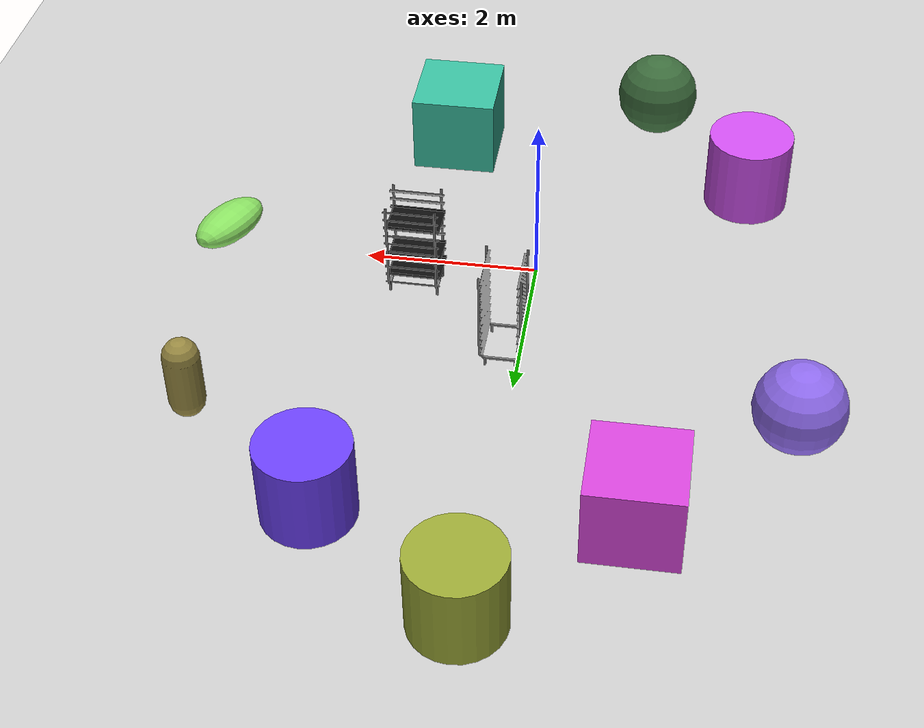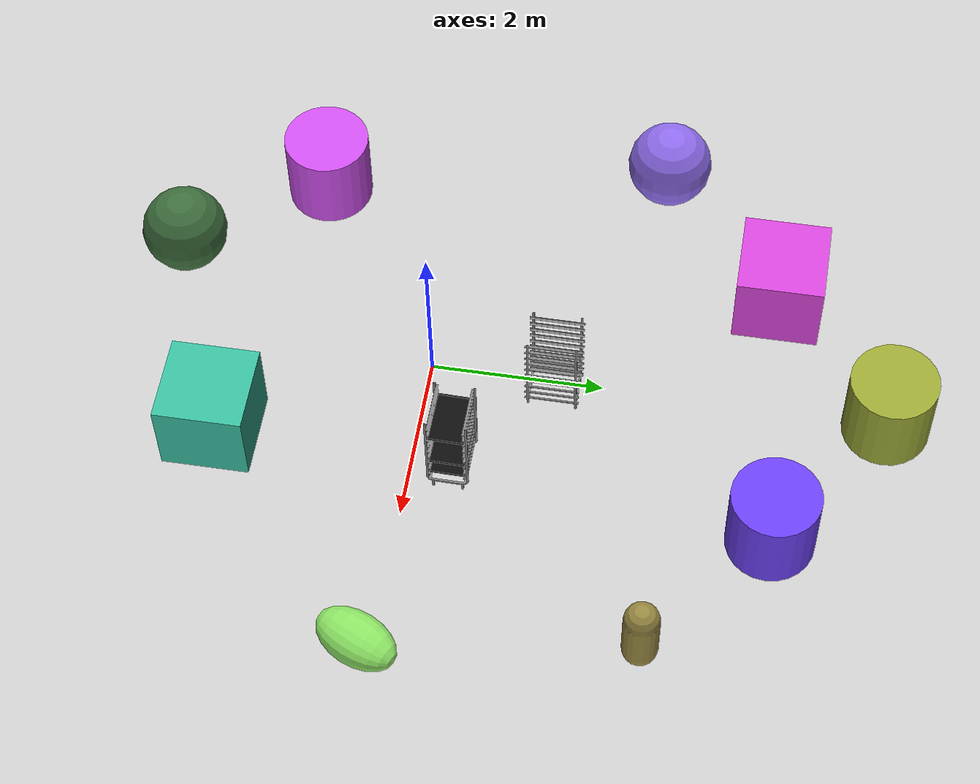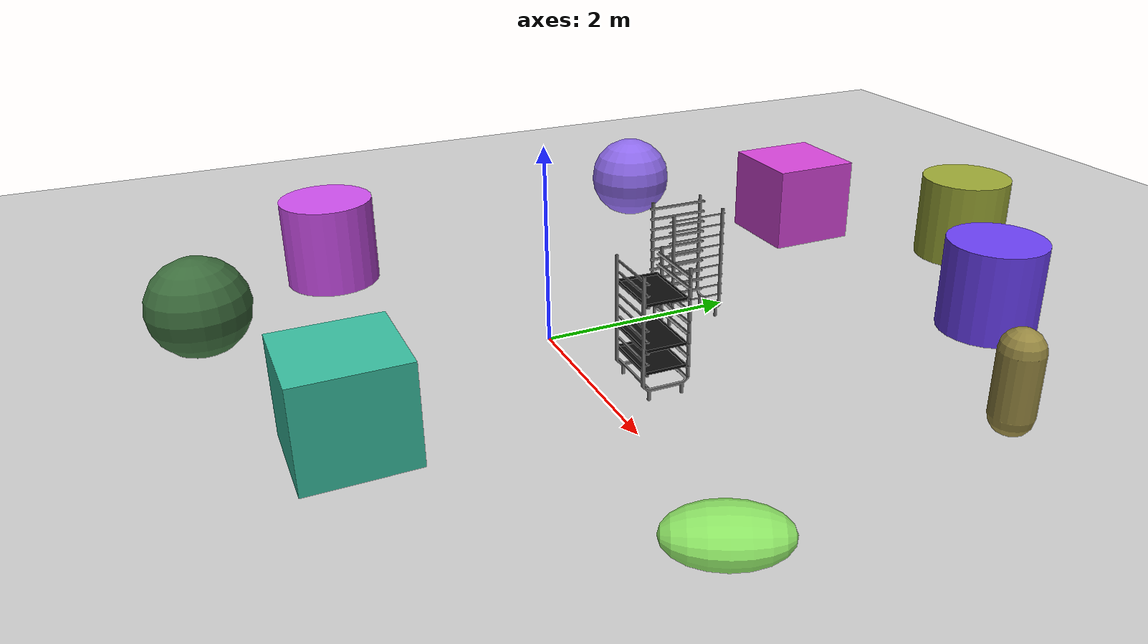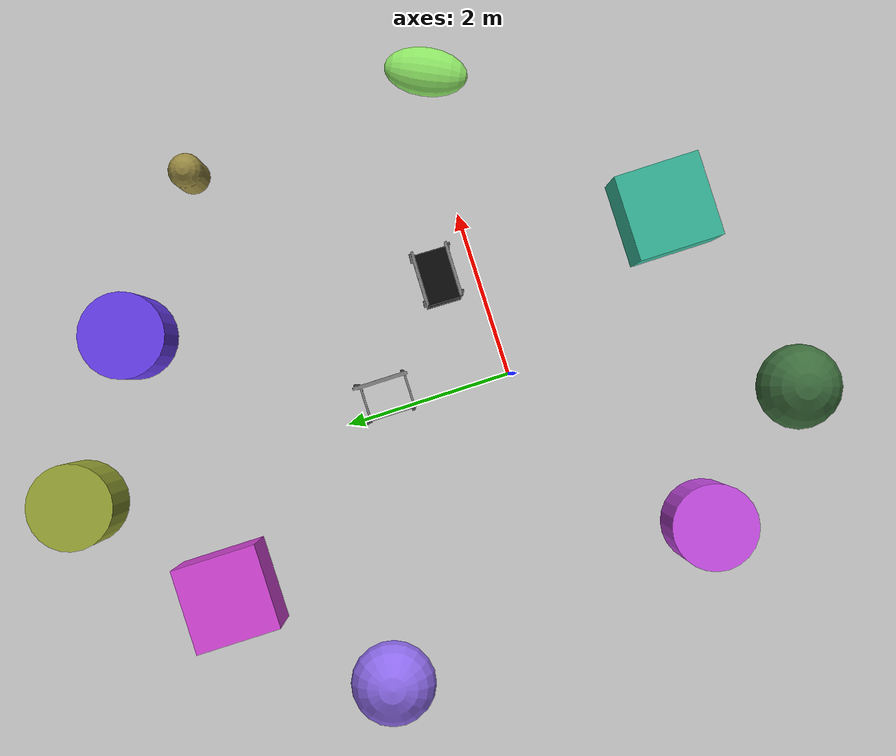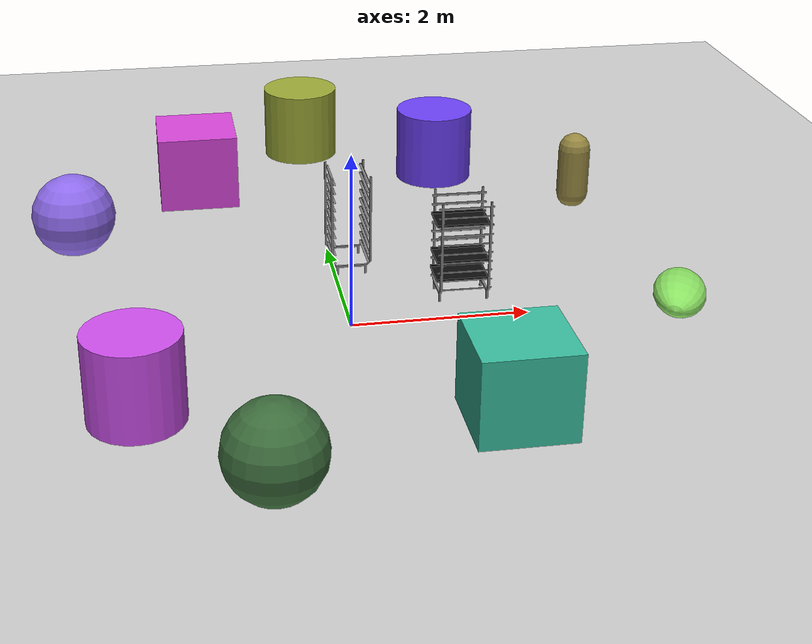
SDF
<sdf version='1.10'>
  <world name='learning'>
    <physics name='1ms' type='ignored'>
      <max_step_size>0.0050000000000000001</max_step_size>
      <real_time_factor>1</real_time_factor>
      <real_time_update_rate>1000</real_time_update_rate>
    </physics>
    <plugin name='gz::sim::systems::Physics' filename='gz-sim-physics-system'/>
    <plugin name='gz::sim::systems::UserCommands' filename='gz-sim-user-commands-system'/>
    <plugin name='gz::sim::systems::SceneBroadcaster' filename='gz-sim-scene-broadcaster-system'/>
    <plugin name='gz::sim::systems::Contact' filename='gz-sim-contact-system'/>
    <plugin name='gz::sim::systems::Sensors' filename='gz-sim-sensors-system'>
      <render_engine>ogre2</render_engine>
    </plugin>
    <gravity>0 0 -9.8100000000000005</gravity>
    <magnetic_field>6.0000000000000002e-06 2.3e-05 -4.1999999999999998e-05</magnetic_field>
    <atmosphere type='adiabatic'/>
    <scene>
      <ambient>0.400000006 0.400000006 0.400000006 1</ambient>
      <background>0.699999988 0.699999988 0.699999988 1</background>
      <shadows>true</shadows>
    </scene>
    <model name='ground_plane'>
      <plugin name='gz::sim::systems::JointStatePublisher' filename='gz-sim-joint-state-publisher-system'>
        <topic>joint_states</topic>
      </plugin>
      <static>true</static>
      <link name='link'>
        <collision name='collision'>
          <geometry>
            <plane>
              <normal>0 0 1</normal>
              <size>100 100</size>
            </plane>
          </geometry>
          <surface>
            <friction>
              <ode/>
            </friction>
            <bounce/>
            <contact/>
          </surface>
        </collision>
        <visual name='visual'>
          <plugin name='gz::sim::systems::Label' filename='libgz-sim-label-system.so'>
            <label>102</label>
          </plugin>
          <geometry>
            <plane>
              <normal>0 0 1</normal>
              <size>100 100</size>
            </plane>
          </geometry>
          <material>
            <ambient>0.800000012 0.800000012 0.800000012 1</ambient>
            <diffuse>0.800000012 0.800000012 0.800000012 1</diffuse>
            <specular>0.800000012 0.800000012 0.800000012 1</specular>
          </material>
        </visual>
        <pose>0 0 0 0 0 0</pose>
        <inertial>
          <pose>0 0 0 0 0 0</pose>
          <mass>1</mass>
          <inertia>
            <ixx>1</ixx>
            <ixy>0</ixy>
            <ixz>0</ixz>
            <iyy>1</iyy>
            <iyz>0</iyz>
            <izz>1</izz>
          </inertia>
        </inertial>
        <enable_wind>false</enable_wind>
      </link>
      <pose>0 0 0 0 0 0</pose>
      <self_collide>false</self_collide>
    </model>
    <model name='Vassoio_0'>
      <pose>1.0071960460966374 0.28433809294650059 0.31089517546142004 0.00017805179260752289 6.9760886605623451e-06 -0.015506780346211647</pose>
      <static>false</static>
      <self_collide>false</self_collide>
      <link name='link'>
        <pose>0 0 0 0 0 0</pose>
        <inertial>
          <pose>0.29999999999999999 0.20000000000000001 0.0032000000000000002 0 0 0</pose>
          <mass>1.522</mass>
          <inertia>
            <ixx>0.0079399999999999991</ixx>
            <ixy>0</ixy>
            <ixz>0</ixz>
            <iyy>0.01404</iyy>
            <iyz>0</iyz>
            <izz>0.02198</izz>
          </inertia>
        </inertial>
        <visual name='visual'>
          <plugin name='gz::sim::systems::Label' filename='libgz-sim-label-system.so'>
            <label>100</label>
          </plugin>
          <geometry>
            <mesh>
              <uri>file:///home/nicola/ros2_ws/src/meshes/Vassoio.dae</uri>
            </mesh>
          </geometry>
          <material>
            <ambient>0.0500000007 0.0500000007 0.0500000007 1</ambient>
            <diffuse>0.0500000007 0.0500000007 0.0500000007 1</diffuse>
            <specular>0.100000001 0.100000001 0.100000001 1</specular>
          </material>
        </visual>
        <collision name='collision'>
          <geometry>
            <mesh>
              <uri>file:///home/nicola/ros2_ws/src/meshes/Vassoio.dae</uri>
            </mesh>
          </geometry>
          <surface>
            <friction>
              <torsional>
                <coefficient>0.001</coefficient>
                <use_patch_radius>true</use_patch_radius>
                <patch_radius>0.050000000000000003</patch_radius>
              </torsional>
            </friction>
            <bounce>
              <restitution_coefficient>0.20000000000000001</restitution_coefficient>
              <threshold>100000</threshold>
            </bounce>
          </surface>
        </collision>
        <enable_wind>false</enable_wind>
      </link>
    </model>
    <model name='Carrello'>
      <pose>1.0487509965896604 0.71814972162246726 0.1399726718664169 -6.7168794197503111e-06 0.00017787300281785703 -1.5828999942067343</pose>
      <static>true</static>
      <self_collide>false</self_collide>
      <link name='link'>
        <pose>0 0 0 0 0 0</pose>
        <inertial>
          <pose>0.23749999999999999 0.28689999999999999 0.499 0 0 0</pose>
          <mass>24.928000000000001</mass>
          <inertia>
            <ixx>0.066227999999999995</ixx>
            <ixy>0</ixy>
            <ixz>0.013979</ixz>
            <iyy>0.074418999999999999</iyy>
            <iyz>0</iyz>
            <izz>0.0082780000000000006</izz>
          </inertia>
        </inertial>
        <visual name='visual'>
          <plugin name='gz::sim::systems::Label' filename='libgz-sim-label-system.so'>
            <label>101</label>
          </plugin>
          <geometry>
            <mesh>
              <uri>file:///home/nicola/ros2_ws/src/meshes/Carrello.dae</uri>
            </mesh>
          </geometry>
          <material>
            <ambient>0.5 0.5 0.5 1</ambient>
            <diffuse>0.5 0.5 0.5 1</diffuse>
            <specular>0.300000012 0.300000012 0.300000012 1</specular>
          </material>
        </visual>
        <collision name='collision'>
          <geometry>
            <mesh>
              <uri>file:///home/nicola/ros2_ws/src/meshes/Carrello.dae</uri>
            </mesh>
          </geometry>
          <surface>
            <friction>
              <torsional>
                <coefficient>0.001</coefficient>
                <use_patch_radius>true</use_patch_radius>
                <patch_radius>0.050000000000000003</patch_radius>
              </torsional>
            </friction>
            <bounce>
              <restitution_coefficient>0.0050000000000000001</restitution_coefficient>
              <threshold>100000</threshold>
            </bounce>
          </surface>
        </collision>
        <enable_wind>false</enable_wind>
      </link>
    </model>
    <model name='Vassoio_1'>
      <pose>1.6152702889036141 0.67432121630093589 0.53096282441638931 -0.00017820534252585216 -5.9574977808868707e-06 3.1263503681007849</pose>
      <static>false</static>
      <self_collide>false</self_collide>
      <link name='link'>
        <pose>0 0 0 0 0 0</pose>
        <inertial>
          <pose>0.29999999999999999 0.20000000000000001 0.0032000000000000002 0 0 0</pose>
          <mass>1.522</mass>
          <inertia>
            <ixx>0.0079399999999999991</ixx>
            <ixy>0</ixy>
            <ixz>0</ixz>
            <iyy>0.01404</iyy>
            <iyz>0</iyz>
            <izz>0.02198</izz>
          </inertia>
        </inertial>
        <visual name='visual'>
          <plugin name='gz::sim::systems::Label' filename='libgz-sim-label-system.so'>
            <label>100</label>
          </plugin>
          <geometry>
            <mesh>
              <uri>file:///home/nicola/ros2_ws/src/meshes/Vassoio.dae</uri>
            </mesh>
          </geometry>
          <material>
            <ambient>0.0500000007 0.0500000007 0.0500000007 1</ambient>
            <diffuse>0.0500000007 0.0500000007 0.0500000007 1</diffuse>
            <specular>0.100000001 0.100000001 0.100000001 1</specular>
          </material>
        </visual>
        <collision name='collision'>
          <geometry>
            <mesh>
              <uri>file:///home/nicola/ros2_ws/src/meshes/Vassoio.dae</uri>
            </mesh>
          </geometry>
          <surface>
            <friction>
              <torsional>
                <coefficient>0.001</coefficient>
                <use_patch_radius>true</use_patch_radius>
                <patch_radius>0.050000000000000003</patch_radius>
              </torsional>
            </friction>
            <bounce>
              <restitution_coefficient>0.20000000000000001</restitution_coefficient>
              <threshold>100000</threshold>
            </bounce>
          </surface>
        </collision>
        <enable_wind>false</enable_wind>
      </link>
    </model>
    <model name='Vassoio_2'>
      <pose>1.6136812492192507 0.67079874047670474 0.97096157791136739 -0.00017814258199808886 -8.0806190346686321e-06 3.1199832047120801</pose>
      <static>false</static>
      <self_collide>false</self_collide>
      <link name='link'>
        <pose>0 0 0 0 0 0</pose>
        <inertial>
          <pose>0.29999999999999999 0.20000000000000001 0.0032000000000000002 0 0 0</pose>
          <mass>1.522</mass>
          <inertia>
            <ixx>0.0079399999999999991</ixx>
            <ixy>0</ixy>
            <ixz>0</ixz>
            <iyy>0.01404</iyy>
            <iyz>0</iyz>
            <izz>0.02198</izz>
          </inertia>
        </inertial>
        <visual name='visual'>
          <plugin name='gz::sim::systems::Label' filename='libgz-sim-label-system.so'>
            <label>100</label>
          </plugin>
          <geometry>
            <mesh>
              <uri>file:///home/nicola/ros2_ws/src/meshes/Vassoio.dae</uri>
            </mesh>
          </geometry>
          <material>
            <ambient>0.0500000007 0.0500000007 0.0500000007 1</ambient>
            <diffuse>0.0500000007 0.0500000007 0.0500000007 1</diffuse>
            <specular>0.100000001 0.100000001 0.100000001 1</specular>
          </material>
        </visual>
        <collision name='collision'>
          <geometry>
            <mesh>
              <uri>file:///home/nicola/ros2_ws/src/meshes/Vassoio.dae</uri>
            </mesh>
          </geometry>
          <surface>
            <friction>
              <torsional>
                <coefficient>0.001</coefficient>
                <use_patch_radius>true</use_patch_radius>
                <patch_radius>0.050000000000000003</patch_radius>
              </torsional>
            </friction>
            <bounce>
              <restitution_coefficient>0.20000000000000001</restitution_coefficient>
              <threshold>100000</threshold>
            </bounce>
          </surface>
        </collision>
        <enable_wind>false</enable_wind>
      </link>
    </model>
    <model name='sphere'>
      <pose>-3.0188999999999999 2.3855200000000001 0.5 0 0 0</pose>
      <link name='sphere_link'>
        <inertial>
          <inertia>
            <ixx>0.10000000000000001</ixx>
            <ixy>0</ixy>
            <ixz>0</ixz>
            <iyy>0.10000000000000001</iyy>
            <iyz>0</iyz>
            <izz>0.10000000000000001</izz>
          </inertia>
          <mass>1</mass>
          <pose>0 0 0 0 0 0</pose>
        </inertial>
        <collision name='sphere_collision'>
          <geometry>
            <sphere>
              <radius>0.5</radius>
            </sphere>
          </geometry>
          <surface>
            <friction>
              <ode/>
            </friction>
            <bounce/>
            <contact/>
          </surface>
        </collision>
        <visual name='sphere_visual'>
          <geometry>
            <sphere>
              <radius>0.5</radius>
            </sphere>
          </geometry>
          <material>
            <ambient>0.560000002 0.419999987 0.930000007 1</ambient>
            <diffuse>0.560000002 0.419999987 0.930000007 1</diffuse>
            <specular>0.5 0.5 0.5 1</specular>
          </material>
        </visual>
        <pose>0 0 0 0 0 0</pose>
        <enable_wind>false</enable_wind>
      </link>
      <static>true</static>
      <self_collide>false</self_collide>
    </model>
    <model name='cylinder'>
      <pose>-2.3627099999999999 -1.6678200000000001 0.499996 0 0 0</pose>
      <link name='cylinder_link'>
        <inertial>
          <inertia>
            <ixx>0.14580000000000001</ixx>
            <ixy>0</ixy>
            <ixz>0</ixz>
            <iyy>0.14580000000000001</iyy>
            <iyz>0</iyz>
            <izz>0.125</izz>
          </inertia>
          <mass>1</mass>
          <pose>0 0 0 0 0 0</pose>
        </inertial>
        <collision name='cylinder_collision'>
          <geometry>
            <cylinder>
              <radius>0.5</radius>
              <length>1</length>
            </cylinder>
          </geometry>
          <surface>
            <friction>
              <ode/>
            </friction>
            <bounce/>
            <contact/>
          </surface>
        </collision>
        <visual name='cylinder_visual'>
          <geometry>
            <cylinder>
              <radius>0.5</radius>
              <length>1</length>
            </cylinder>
          </geometry>
          <material>
            <ambient>0.810000002 0.310000002 0.930000007 1</ambient>
            <diffuse>0.810000002 0.310000002 0.930000007 1</diffuse>
            <specular>0.5 0.5 0.5 1</specular>
          </material>
        </visual>
        <pose>0 0 0 0 0 0</pose>
        <enable_wind>false</enable_wind>
      </link>
      <static>true</static>
      <self_collide>false</self_collide>
    </model>
    <model name='box'>
      <pose>1.27199 -2.2716500000000002 0.49982300000000002 9.4000000000000144e-05 -0.0001509999999999992 0.0021530000000000082</pose>
      <link name='box_link'>
        <inertial>
          <inertia>
            <ixx>0.16666</ixx>
            <ixy>0</ixy>
            <ixz>0</ixz>
            <iyy>0.16666</iyy>
            <iyz>0</iyz>
            <izz>0.16666</izz>
          </inertia>
          <mass>1</mass>
          <pose>0 0 0 0 0 0</pose>
        </inertial>
        <collision name='box_collision'>
          <geometry>
            <box>
              <size>1 1 1</size>
            </box>
          </geometry>
          <surface>
            <friction>
              <ode/>
            </friction>
            <bounce/>
            <contact/>
          </surface>
        </collision>
        <visual name='box_visual'>
          <geometry>
            <box>
              <size>1 1 1</size>
            </box>
          </geometry>
          <material>
            <ambient>0.219999999 0.74000001 0.620000005 1</ambient>
            <diffuse>0.219999999 0.74000001 0.620000005 1</diffuse>
            <specular>0.5 0.5 0.5 1</specular>
          </material>
        </visual>
        <pose>0 0 0 0 0 0</pose>
        <enable_wind>false</enable_wind>
      </link>
      <static>true</static>
      <self_collide>false</self_collide>
    </model>
    <model name='Carrello_1'>
      <pose>-0.05540379136800766 1.1711015701293945 0.1399722546339035 -4.6297699311223587e-05 6.8408997572320471e-05 -5.7507100025537275e-05</pose>
      <static>true</static>
      <self_collide>false</self_collide>
      <link name='link'>
        <pose>0 0 0 0 0 0</pose>
        <inertial>
          <pose>0.23749999999999999 0.28689999999999999 0.499 0 0 0</pose>
          <mass>24.928000000000001</mass>
          <inertia>
            <ixx>0.066227999999999995</ixx>
            <ixy>0</ixy>
            <ixz>0.013979</ixz>
            <iyy>0.074418999999999999</iyy>
            <iyz>0</iyz>
            <izz>0.0082780000000000006</izz>
          </inertia>
        </inertial>
        <visual name='visual'>
          <plugin name='gz::sim::systems::Label' filename='libgz-sim-label-system.so'>
            <label>101</label>
          </plugin>
          <geometry>
            <mesh>
              <uri>file:///home/nicola/ros2_ws/src/meshes/Carrello.dae</uri>
            </mesh>
          </geometry>
          <material>
            <ambient>0.5 0.5 0.5 1</ambient>
            <diffuse>0.5 0.5 0.5 1</diffuse>
            <specular>0.300000012 0.300000012 0.300000012 1</specular>
          </material>
        </visual>
        <collision name='collision'>
          <geometry>
            <mesh>
              <uri>file:///home/nicola/ros2_ws/src/meshes/Carrello.dae</uri>
            </mesh>
          </geometry>
          <surface>
            <friction>
              <torsional>
                <coefficient>0.001</coefficient>
                <use_patch_radius>true</use_patch_radius>
                <patch_radius>0.050000000000000003</patch_radius>
              </torsional>
            </friction>
            <bounce>
              <restitution_coefficient>0.0050000000000000001</restitution_coefficient>
              <threshold>100000</threshold>
            </bounce>
          </surface>
        </collision>
        <enable_wind>false</enable_wind>
      </link>
    </model>
    <model name='cylinder_0'>
      <pose>0.074198 5.2423299999999999 0.49998300000000001 0 0 0</pose>
      <link name='cylinder_link'>
        <inertial>
          <inertia>
            <ixx>0.14580000000000001</ixx>
            <ixy>0</ixy>
            <ixz>0</ixz>
            <iyy>0.14580000000000001</iyy>
            <iyz>0</iyz>
            <izz>0.125</izz>
          </inertia>
          <mass>1</mass>
          <pose>0 0 0 0 0 0</pose>
        </inertial>
        <collision name='cylinder_collision'>
          <geometry>
            <cylinder>
              <radius>0.5</radius>
              <length>1</length>
            </cylinder>
          </geometry>
          <surface>
            <friction>
              <ode/>
            </friction>
            <bounce/>
            <contact/>
          </surface>
        </collision>
        <visual name='cylinder_visual'>
          <geometry>
            <cylinder>
              <radius>0.5</radius>
              <length>1</length>
            </cylinder>
          </geometry>
          <material>
            <ambient>0.610000014 0.660000026 0.209999993 1</ambient>
            <diffuse>0.610000014 0.660000026 0.209999993 1</diffuse>
            <specular>0.5 0.5 0.5 1</specular>
          </material>
        </visual>
        <pose>0 0 0 0 0 0</pose>
        <enable_wind>false</enable_wind>
      </link>
      <static>true</static>
      <self_collide>false</self_collide>
    </model>
    <model name='ground_plane_1'>
      <plugin name='gz::sim::systems::JointStatePublisher' filename='gz-sim-joint-state-publisher-system'>
        <topic>joint_states</topic>
      </plugin>
      <static>true</static>
      <link name='link'>
        <collision name='collision'>
          <geometry>
            <plane>
              <normal>0 0 1</normal>
              <size>100 100</size>
            </plane>
          </geometry>
          <surface>
            <friction>
              <ode/>
            </friction>
            <bounce/>
            <contact/>
          </surface>
        </collision>
        <visual name='visual'>
          <plugin name='gz::sim::systems::Label' filename='libgz-sim-label-system.so'>
            <label>102</label>
          </plugin>
          <geometry>
            <plane>
              <normal>0 0 1</normal>
              <size>100 100</size>
            </plane>
          </geometry>
          <material>
            <ambient>0.800000012 0.800000012 0.800000012 1</ambient>
            <diffuse>0.800000012 0.800000012 0.800000012 1</diffuse>
            <specular>0.800000012 0.800000012 0.800000012 1</specular>
          </material>
        </visual>
        <pose>0 0 0 0 0 0</pose>
        <inertial>
          <pose>0 0 0 0 0 0</pose>
          <mass>1</mass>
          <inertia>
            <ixx>1</ixx>
            <ixy>0</ixy>
            <ixz>0</ixz>
            <iyy>1</iyy>
            <iyz>0</iyz>
            <izz>1</izz>
          </inertia>
        </inertial>
        <enable_wind>false</enable_wind>
      </link>
      <pose>1.9240471710147793 -0.45503547867003974 0 0 0 0</pose>
      <self_collide>false</self_collide>
    </model>
    <model name='capsule'>
      <pose>3.3494209916174582 2.8507070713263238 0.4999999951681095 0 0 0</pose>
      <link name='capsule_link'>
        <inertial>
          <inertia>
            <ixx>0.074153999999999998</ixx>
            <ixy>0</ixy>
            <ixz>0</ixz>
            <iyy>0.074153999999999998</iyy>
            <iyz>0</iyz>
            <izz>0.018769000000000001</izz>
          </inertia>
          <mass>1</mass>
          <pose>0 0 0 0 0 0</pose>
        </inertial>
        <collision name='capsule_collision'>
          <geometry>
            <capsule>
              <radius>0.20000000000000001</radius>
              <length>0.59999999999999998</length>
            </capsule>
          </geometry>
          <surface>
            <friction>
              <ode/>
            </friction>
            <bounce/>
            <contact/>
          </surface>
        </collision>
        <visual name='capsule_visual'>
          <geometry>
            <capsule>
              <radius>0.20000000000000001</radius>
              <length>0.59999999999999998</length>
            </capsule>
          </geometry>
          <material>
            <ambient>0.600000024 0.540000021 0.25999999 1</ambient>
            <diffuse>0.600000024 0.540000021 0.25999999 1</diffuse>
            <specular>0.5 0.5 0.5 1</specular>
          </material>
        </visual>
        <pose>0 0 0 0 0 0</pose>
        <enable_wind>false</enable_wind>
      </link>
      <static>false</static>
      <self_collide>false</self_collide>
    </model>
    <model name='ellipsoid'>
      <pose>3.7091939589159466 -0.14779110055204117 0.18666845060864987 1.5707959663867626 -1.3774885618425026 -0.45564191438129575</pose>
      <link name='ellipsoid_link'>
        <inertial>
          <inertia>
            <ixx>0.068000000000000005</ixx>
            <ixy>0</ixy>
            <ixz>0</ixz>
            <iyy>0.058000000000000003</iyy>
            <iyz>0</iyz>
            <izz>0.025999999999999999</izz>
          </inertia>
          <mass>1</mass>
          <pose>0 0 0 0 0 0</pose>
        </inertial>
        <collision name='ellipsoid_collision'>
          <geometry>
            <ellipsoid>
              <radii>0.20000000000000001 0.29999999999999999 0.5</radii>
            </ellipsoid>
          </geometry>
          <surface>
            <friction>
              <ode/>
            </friction>
            <bounce/>
            <contact/>
          </surface>
        </collision>
        <visual name='ellipsoid_visual'>
          <geometry>
            <ellipsoid>
              <radii>0.20000000000000001 0.29999999999999999 0.5</radii>
            </ellipsoid>
          </geometry>
          <material>
            <ambient>0.550000012 0.889999986 0.389999986 1</ambient>
            <diffuse>0.550000012 0.889999986 0.389999986 1</diffuse>
            <specular>0.5 0.5 0.5 1</specular>
          </material>
        </visual>
        <pose>0 0 0 0 0 0</pose>
        <enable_wind>false</enable_wind>
      </link>
      <static>false</static>
      <self_collide>false</self_collide>
    </model>
    <model name='cylinder_1'>
      <pose>1.7570850582874249 4.092308344606062 0.49999984706571837 6.5636061785606084e-18 -3.3953784237360041e-17 -5.8795680762906473e-20</pose>
      <link name='cylinder_link'>
        <inertial>
          <inertia>
            <ixx>0.14580000000000001</ixx>
            <ixy>0</ixy>
            <ixz>0</ixz>
            <iyy>0.14580000000000001</iyy>
            <iyz>0</iyz>
            <izz>0.125</izz>
          </inertia>
          <mass>1</mass>
          <pose>0 0 0 0 0 0</pose>
        </inertial>
        <collision name='cylinder_collision'>
          <geometry>
            <cylinder>
              <radius>0.5</radius>
              <length>1</length>
            </cylinder>
          </geometry>
          <surface>
            <friction>
              <ode/>
            </friction>
            <bounce/>
            <contact/>
          </surface>
        </collision>
        <visual name='cylinder_visual'>
          <geometry>
            <cylinder>
              <radius>0.5</radius>
              <length>1</length>
            </cylinder>
          </geometry>
          <material>
            <ambient>0.419999987 0.25 0.959999979 1</ambient>
            <diffuse>0.419999987 0.25 0.959999979 1</diffuse>
            <specular>0.5 0.5 0.5 1</specular>
          </material>
        </visual>
        <pose>0 0 0 0 0 0</pose>
        <enable_wind>false</enable_wind>
      </link>
      <static>false</static>
      <self_collide>false</self_collide>
    </model>
    <model name='sphere_0'>
      <pose>-1.162019320795495 -3.1542455276727477 0.49999999516810884 8.645922660888569e-40 -3.1134558879840972e-19 1.918429275316333e-55</pose>
      <link name='sphere_link'>
        <inertial>
          <inertia>
            <ixx>0.10000000000000001</ixx>
            <ixy>0</ixy>
            <ixz>0</ixz>
            <iyy>0.10000000000000001</iyy>
            <iyz>0</iyz>
            <izz>0.10000000000000001</izz>
          </inertia>
          <mass>1</mass>
          <pose>0 0 0 0 0 0</pose>
        </inertial>
        <collision name='sphere_collision'>
          <geometry>
            <sphere>
              <radius>0.5</radius>
            </sphere>
          </geometry>
          <surface>
            <friction>
              <ode/>
            </friction>
            <bounce/>
            <contact/>
          </surface>
        </collision>
        <visual name='sphere_visual'>
          <geometry>
            <sphere>
              <radius>0.5</radius>
            </sphere>
          </geometry>
          <material>
            <ambient>0.239999995 0.430000007 0.239999995 1</ambient>
            <diffuse>0.239999995 0.430000007 0.239999995 1</diffuse>
            <specular>0.5 0.5 0.5 1</specular>
          </material>
        </visual>
        <pose>0 0 0 0 0 0</pose>
        <enable_wind>false</enable_wind>
      </link>
      <static>false</static>
      <self_collide>false</self_collide>
    </model>
    <model name='box_0'>
      <pose>-1.455280106427244 3.8727901801057301 0.49999999516796406 7.7559691981767181e-21 5.9119238545823558e-20 -1.0392520172771205e-20</pose>
      <link name='box_link'>
        <inertial>
          <inertia>
            <ixx>0.16666</ixx>
            <ixy>0</ixy>
            <ixz>0</ixz>
            <iyy>0.16666</iyy>
            <iyz>0</iyz>
            <izz>0.16666</izz>
          </inertia>
          <mass>1</mass>
          <pose>0 0 0 0 0 0</pose>
        </inertial>
        <collision name='box_collision'>
          <geometry>
            <box>
              <size>1 1 1</size>
            </box>
          </geometry>
          <surface>
            <friction>
              <ode/>
            </friction>
            <bounce/>
            <contact/>
          </surface>
        </collision>
        <visual name='box_visual'>
          <geometry>
            <box>
              <size>1 1 1</size>
            </box>
          </geometry>
          <material>
            <ambient>0.839999974 0.270000011 0.850000024 1</ambient>
            <diffuse>0.839999974 0.270000011 0.850000024 1</diffuse>
            <specular>0.5 0.5 0.5 1</specular>
          </material>
        </visual>
        <pose>0 0 0 0 0 0</pose>
        <enable_wind>false</enable_wind>
      </link>
      <static>false</static>
      <self_collide>false</self_collide>
    </model>
    <light name='sun' type='directional'>
      <pose>0 0 8 0 0 0</pose>
      <cast_shadows>true</cast_shadows>
      <intensity>1</intensity>
      <direction>-0.5 0.10000000000000001 -0.90000000000000002</direction>
      <diffuse>0.800000012 0.800000012 0.800000012 1</diffuse>
      <specular>0.200000003 0.200000003 0.200000003 1</specular>
      <attenuation>
        <range>1000</range>
        <linear>0.0099999997764825821</linear>
        <constant>0.89999997615814209</constant>
        <quadratic>0.0010000000474974513</quadratic>
      </attenuation>
      <spot>
        <inner_angle>0</inner_angle>
        <outer_angle>0</outer_angle>
        <falloff>0</falloff>
      </spot>
    </light>
  </world>
</sdf>
